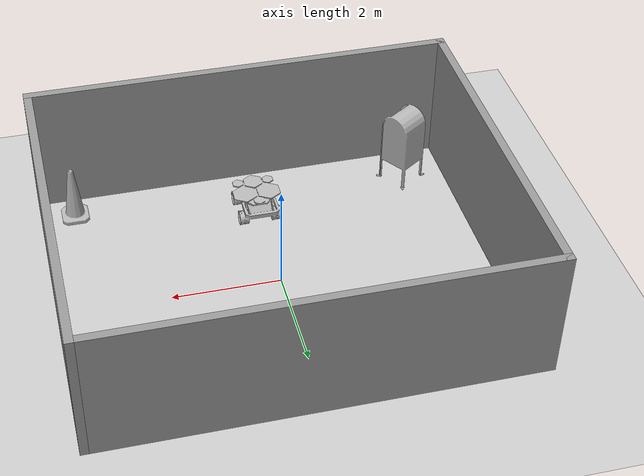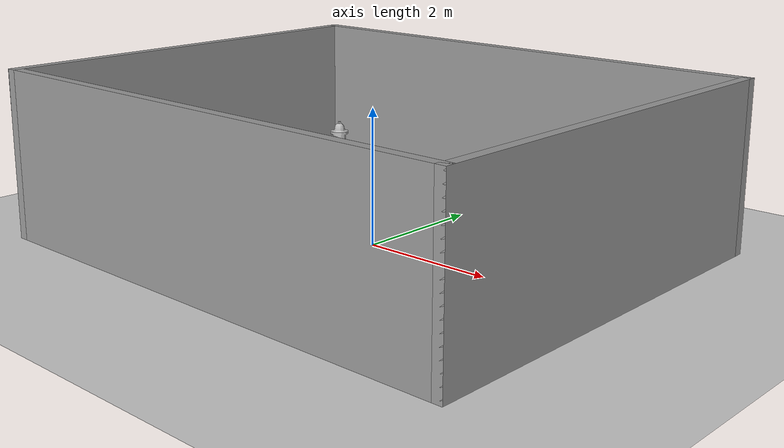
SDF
<sdf version="1.7">
 <world name="default">
  <light name="sun" type="directional">
   <pose>0 0 10 0 -0 0</pose>
   <diffuse>0.8 0.8 0.8 1</diffuse>
   <specular>0.2 0.2 0.2 1</specular>
   <attenuation>
    <range>1000</range>
    <constant>0.9</constant>
    <linear>0.01</linear>
    <quadratic>0.001</quadratic>
   </attenuation>
   <direction>-0.5 0.1 -0.9</direction>
   <spot><inner_angle>0</inner_angle><outer_angle>0</outer_angle><falloff>0</falloff></spot>
  </light>
  <model name="ground_plane">
   <static>1</static>
   <link name="link">
    <collision name="collision">
     <geometry><plane><normal>0 0 1</normal><size>100 100</size></plane></geometry>
     <surface>
      <contact><collide_bitmask>65535</collide_bitmask></contact>
      <friction><ode><mu>100</mu><mu2>50</mu2></ode></friction>
     </surface>
    </collision>
    <visual name="visual">
     <cast_shadows>0</cast_shadows>
     <geometry><plane><normal>0 0 1</normal><size>100 100</size></plane></geometry>
     <material>
      <script><uri>file://media/materials/scripts/gazebo.material</uri><name>Gazebo/Grey</name></script>
     </material>
    </visual>
   </link>
  </model>
  <gravity>0 0 -9.8</gravity>
  <magnetic_field>6e-06 2.3e-05 -4.2e-05</magnetic_field>
  <atmosphere type="adiabatic"/>
  <physics type="ode">
   <max_step_size>0.001</max_step_size>
   <real_time_factor>1</real_time_factor>
   <real_time_update_rate>1000</real_time_update_rate>
  </physics>
  <scene><ambient>0.4 0.4 0.4 1</ambient><background>0.7 0.7 0.7 1</background><shadows>1</shadows></scene>
  <spherical_coordinates>
   <surface_model>EARTH_WGS84</surface_model>
   <latitude_deg>0</latitude_deg>
   <longitude_deg>0</longitude_deg>
   <elevation>0</elevation>
   <heading_deg>0</heading_deg>
  </spherical_coordinates>
  <model name="test_world2">
   <pose>0.034239 -0.034473 0 0 -0 0</pose>
   <link name="Wall_2">
    <collision name="Wall_2_Collision">
     <geometry><box><size>6.5 0.15 2.5</size></box></geometry>
     <pose>0 0 1.25 0 -0 0</pose>
    </collision>
    <visual name="Wall_2_Visual">
     <pose>0 0 1.25 0 -0 0</pose>
     <geometry><box><size>6.5 0.15 2.5</size></box></geometry>
     <material>
      <script><uri>file://media/materials/scripts/gazebo.material</uri><name>Gazebo/Grey</name></script>
      <ambient>1 1 1 1</ambient>
     </material>
     <meta><layer>0</layer></meta>
    </visual>
    <pose>3.925 0 0 0 -0 1.5708</pose>
   </link>
   <link name="Wall_3">
    <collision name="Wall_3_Collision">
     <geometry><box><size>8 0.15 2.5</size></box></geometry>
     <pose>0 0 1.25 0 -0 0</pose>
    </collision>
    <visual name="Wall_3_Visual">
     <pose>0 0 1.25 0 -0 0</pose>
     <geometry><box><size>8 0.15 2.5</size></box></geometry>
     <material>
      <script><uri>file://media/materials/scripts/gazebo.material</uri><name>Gazebo/Grey</name></script>
      <ambient>1 1 1 1</ambient>
     </material>
     <meta><layer>0</layer></meta>
    </visual>
    <pose>-0 3.175 0 0 -0 3.14159</pose>
   </link>
   <link name="Wall_4">
    <collision name="Wall_4_Collision">
     <geometry><box><size>6.5 0.15 2.5</size></box></geometry>
     <pose>0 0 1.25 0 -0 0</pose>
    </collision>
    <visual name="Wall_4_Visual">
     <pose>0 0 1.25 0 -0 0</pose>
     <geometry><box><size>6.5 0.15 2.5</size></box></geometry>
     <material>
      <script><uri>file://media/materials/scripts/gazebo.material</uri><name>Gazebo/Grey</name></script>
      <ambient>1 1 1 1</ambient>
     </material>
     <meta><layer>0</layer></meta>
    </visual>
    <pose>-3.925 0 0 0 -0 -1.5708</pose>
   </link>
   <link name="Wall_5">
    <collision name="Wall_5_Collision">
     <geometry><box><size>8 0.15 2.5</size></box></geometry>
     <pose>0 0 1.25 0 -0 0</pose>
    </collision>
    <visual name="Wall_5_Visual">
     <pose>0 0 1.25 0 -0 0</pose>
     <geometry><box><size>8 0.15 2.5</size></box></geometry>
     <material>
      <script><uri>file://media/materials/scripts/gazebo.material</uri><name>Gazebo/Grey</name></script>
      <ambient>1 1 1 1</ambient>
     </material>
     <meta><layer>0</layer></meta>
    </visual>
    <pose>-0 -3.175 0 0 -0 0</pose>
   </link>
   <static>1</static>
  </model>
  <model name="Construction Barrel">
   <link name="link">
    <inertial>
     <pose>0 0 0.4 0 -0 0</pose>
     <mass>500</mass>
     <inertia><ixx>51.2096</ixx><iyy>51.2096</iyy><izz>25</izz><ixy>0</ixy><ixz>0</ixz><iyz>0</iyz></inertia>
    </inertial>
    <collision name="collision">
     <geometry><mesh><uri>model://construction_barrel/meshes/construction_barrel.dae</uri></mesh></geometry>
    </collision>
    <visual name="visual">
     <geometry><mesh><uri>model://construction_barrel/meshes/construction_barrel.dae</uri></mesh></geometry>
    </visual>
   </link>
   <pose>3.22528 2.37455 -2e-06 8e-06 -4e-06 -1.7e-05</pose>
  </model>
  <model name="Construction Cone">
   <link name="link">
    <collision name="collision">
     <geometry>
      <mesh><scale>10 10 10</scale><uri>model://construction_cone/meshes/construction_cone.dae</uri></mesh>
     </geometry>
    </collision>
    <visual name="visual">
     <geometry>
      <mesh><scale>10 10 10</scale><uri>model://construction_cone/meshes/construction_cone.dae</uri></mesh>
     </geometry>
    </visual>
    <inertial>
     <inertia><ixx>1</ixx><ixy>0</ixy><ixz>0</ixz><iyy>1</iyy><iyz>0</iyz><izz>1</izz></inertia>
     <mass>1</mass>
    </inertial>
   </link>
   <pose>3.39043 -2.65393 0 -0 -0 -0</pose>
  </model>
  <model name="fire_hydrant">
   <static>1</static>
   <link name="link">
    <collision name="collision">
     <geometry><mesh><uri>model://fire_hydrant/meshes/fire_hydrant.dae</uri></mesh></geometry>
    </collision>
    <visual name="visual">
     <geometry><mesh><uri>model://fire_hydrant/meshes/fire_hydrant.dae</uri></mesh></geometry>
    </visual>
   </link>
   <pose>-3.19995 2.55235 0 0 -0 0</pose>
  </model>
  <model name="postbox">
   <static>1</static>
   <link name="link">
    <collision name="collision">
     <geometry><mesh><uri>model://postbox/meshes/postbox.dae</uri></mesh></geometry>
    </collision>
    <visual name="visual"><geometry><mesh><uri>model://postbox/meshes/postbox.dae</uri></mesh></geometry></visual>
   </link>
   <pose>-2.99586 -2.42747 0 0 -0 0.591604</pose>
  </model>
  <model name="mars_rover">
   <static>1</static>
   <link name="link">
    <collision name="solar_panel_collision">
     <pose>0 -0.06945 0.47293 0 -0 0</pose>
     <geometry><box><size>0.87974 0.8821 0.02602</size></box></geometry>
    </collision>
    <collision name="chassis_collision">
     <pose>0 -0.05 0.31475 0 -0 0</pose>
     <geometry><box><size>0.49522 0.67401 0.28915</size></box></geometry>
    </collision>
    <collision name="rear_left_bumper_collision">
     <pose>0.30107 0.3835 0.38976 0 -0 0</pose>
     <geometry><box><size>0.04442 0.38897 0.07918</size></box></geometry>
    </collision>
    <collision name="rear_right_bumper_collision">
     <pose>-0.30107 0.3835 0.38976 0 -0 0</pose>
     <geometry><box><size>0.04442 0.38897 0.07918</size></box></geometry>
    </collision>
    <collision name="rear_bumper_collision">
     <pose>0 0.59414 0.38976 0 -0 0</pose>
     <geometry><box><size>0.56656 0.04442 0.07918</size></box></geometry>
    </collision>
    <collision name="bin_back_panel_collision">
     <pose>0 0.47 0.32114 0.69137 -0 0</pose>
     <geometry><box><size>0.43774 0.212366 0.05173</size></box></geometry>
    </collision>
    <collision name="bin_left_panel_collision1">
     <pose>0.22615 0.32897 0.33193 0 -0 0</pose>
     <geometry><box><size>0.01116 0.19338 0.16304</size></box></geometry>
    </collision>
    <collision name="bin_left_panel_collision2">
     <pose>0.22615 0.471 0.39308 0 -0 0</pose>
     <geometry><box><size>0.01116 0.15 0.04</size></box></geometry>
    </collision>
    <collision name="bin_left_panel_collision3">
     <pose>0.22615 0.45 0.35308 0 -0 0</pose>
     <geometry><box><size>0.01116 0.15 0.04</size></box></geometry>
    </collision>
    <collision name="bin_left_panel_collision4">
     <pose>0.22615 0.39308 0.31308 0 -0 0</pose>
     <geometry><box><size>0.01116 0.15 0.04</size></box></geometry>
    </collision>
    <collision name="bin_right_panel_collision1">
     <pose>-0.22615 0.32897 0.33193 0 -0 0</pose>
     <geometry><box><size>0.01116 0.19338 0.16304</size></box></geometry>
    </collision>
    <collision name="bin_right_panel_collision2">
     <pose>-0.22615 0.471 0.39308 0 -0 0</pose>
     <geometry><box><size>0.01116 0.15 0.04</size></box></geometry>
    </collision>
    <collision name="bin_right_panel_collision3">
     <pose>-0.22615 0.45 0.35308 0 -0 0</pose>
     <geometry><box><size>0.01116 0.15 0.04</size></box></geometry>
    </collision>
    <collision name="bin_right_panel_collision4">
     <pose>-0.22615 0.39308 0.31308 0 -0 0</pose>
     <geometry><box><size>0.01116 0.15 0.04</size></box></geometry>
    </collision>
    <collision name="bin_front_panel_collision">
     <pose>0 0.30047 0.32114 2.26207 -0 0</pose>
     <geometry><box><size>0.43774 0.212366 0.05173</size></box></geometry>
    </collision>
    <collision name="front_left_wheel_collision">
     <pose>0.31103 -0.32115 0.1358 1.5707 0 1.5707</pose>
     <geometry><cylinder><radius>0.1358</radius><length>0.1641</length></cylinder></geometry>
    </collision>
    <collision name="front_right_wheel_collision">
     <pose>-0.31103 -0.32115 0.1358 1.5707 0 1.5707</pose>
     <geometry><cylinder><radius>0.1358</radius><length>0.1641</length></cylinder></geometry>
    </collision>
    <collision name="rear_left_wheel_collision">
     <pose>0.31103 0.28049 0.1358 1.5707 0 1.5707</pose>
     <geometry><cylinder><radius>0.1358</radius><length>0.1641</length></cylinder></geometry>
    </collision>
    <collision name="rear_right_wheel_collision">
     <pose>-0.31103 0.28049 0.1358 1.5707 0 1.5707</pose>
     <geometry><cylinder><radius>0.1358</radius><length>0.1641</length></cylinder></geometry>
    </collision>
    <visual name="visual">
     <geometry><mesh><uri>model://mars_rover/meshes/rover.dae</uri></mesh></geometry>
    </visual>
   </link>
   <pose>0.006925 -1.99584 0 0 -0 0</pose>
  </model>
 </world>
</sdf>
